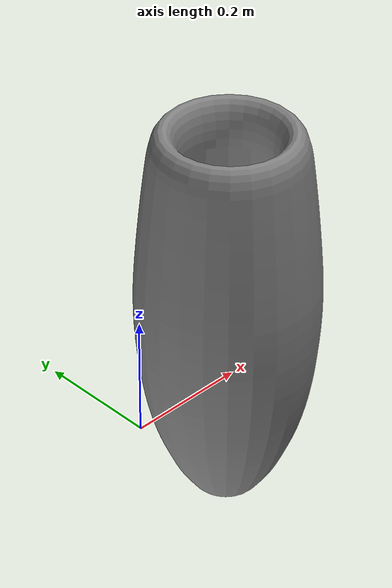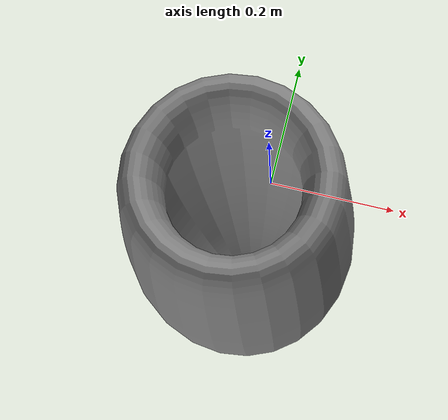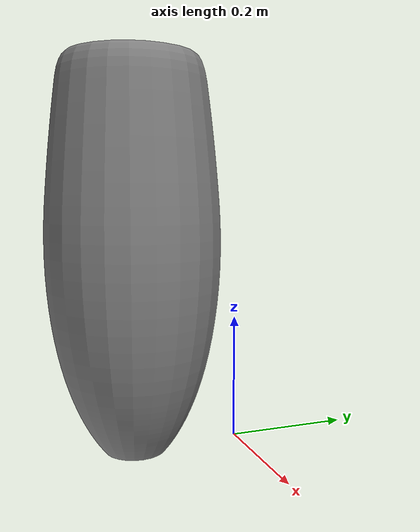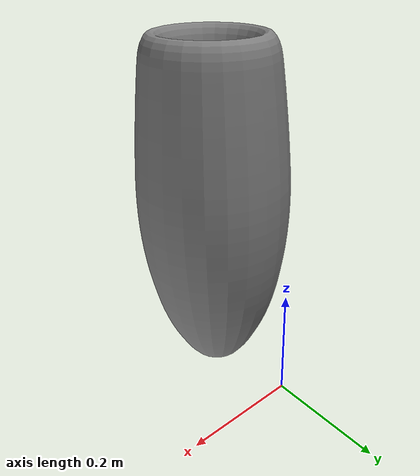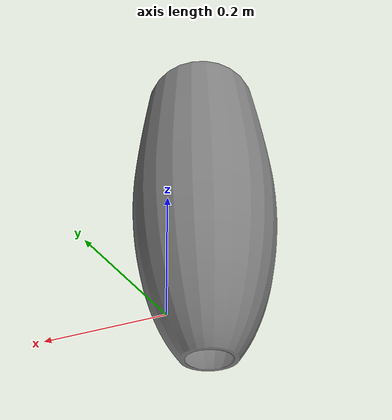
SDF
<?xml version='1.0'?>
<sdf version='1.6'>
  <model name='vase_large_3'>
    <link name='link_36'>
      <pose frame=''>0.007975 -0.173271 0 0 -0 0</pose>
       <visual name='visual'>
        <pose frame=''>0 0 0 0 -0 0</pose>
        <geometry>
          <mesh>
            <uri>model://vase_large_3/meshes/vase6.dae</uri>
            <scale>1 1 1</scale>
          </mesh>
        </geometry>
    <material>
          <script>
            <uri>model://vase_large_3/materials/scripts</uri>
            <uri>model://vase_large_3/materials/textures</uri>
            <name>vase_pattern3</name>
          </script>
        </material>
        <cast_shadows>1</cast_shadows>
        <transparency>0</transparency>
      </visual>
      <collision name='collision'>
        <laser_retro>0</laser_retro>
        <max_contacts>10</max_contacts>
        <pose frame=''>0 0 0 0 -0 0</pose>
        <geometry>
          <mesh>
            <uri>model://vase_large_3/meshes/vase6.dae</uri>
            <scale>1 1 1</scale>
          </mesh>
        </geometry>
       </collision>
    </link>
    <static>1</static>
    <allow_auto_disable>1</allow_auto_disable>
  </model>
</sdf>
